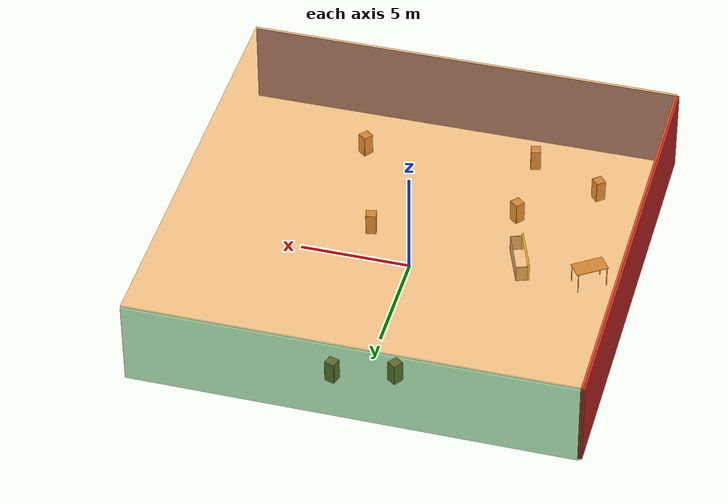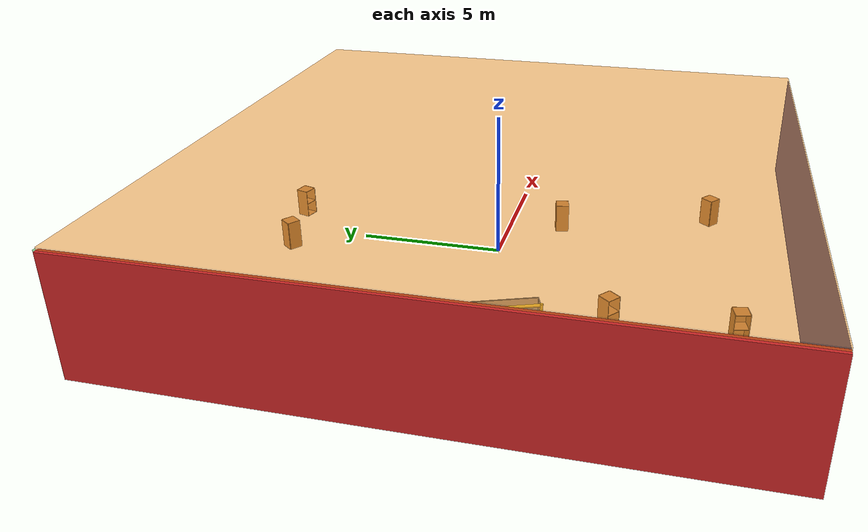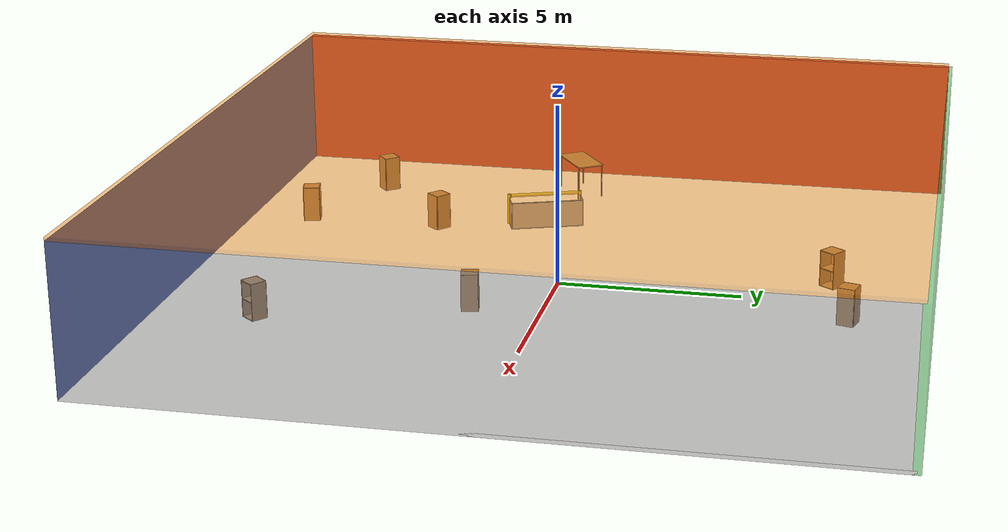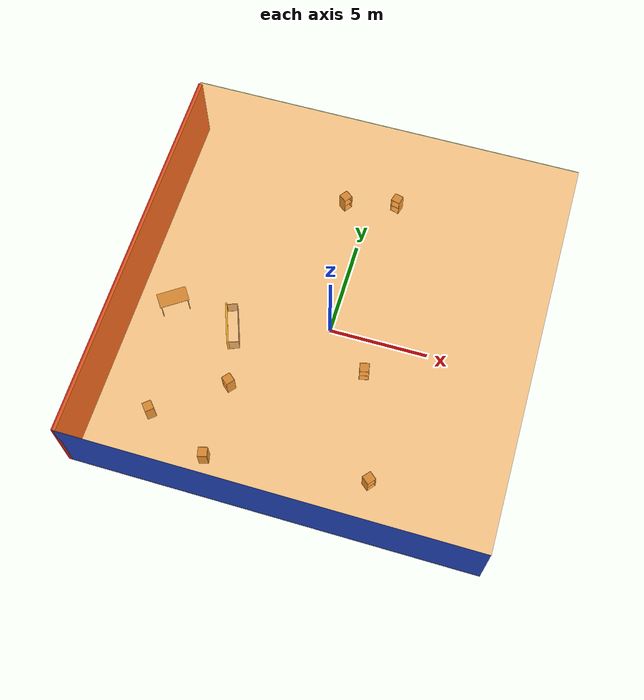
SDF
<sdf version="1.4">
 <world name="default">
  <physics type="ode">
   <max_step_size>0.001</max_step_size>
   <real_time_factor>1</real_time_factor>
   <real_time_update_rate>1000</real_time_update_rate>
   <gravity>0 0 -9.8</gravity>
  </physics>
  <scene><ambient>0.4 0.4 0.4 1</ambient><background>0.7 0.7 0.7 1</background><shadows>1</shadows></scene>
  <model name="Surrounding">
   <static>1</static>
   <link name="Ceiling">
    <collision name="Ceiling_Collision"><geometry><box><size>20 20 0.1</size></box></geometry></collision>
    <visual name="Ceiling_Visual">
     <geometry><box><size>20 20 0.1</size></box></geometry>
     <material>
      <script>
       <uri>file://media/materials/scripts/gazebo.material</uri>
       <name>Gazebo/OrangeTransparent</name>
      </script>
     </material>
    </visual>
    <pose>0 0 4.05 0 0 0</pose>
   </link>
   <link name="Wall_South">
    <collision name="Wall_South_Collision">
     <geometry><box><size>20 0 4</size></box></geometry>
     <pose>0 0 2 0 -0 0</pose>
    </collision>
    <visual name="Wall_South_Visual">
     <pose>0 0 2 0 -0 0</pose>
     <geometry><box><size>20 0 4</size></box></geometry>
     <material>
      <script><uri>file://media/materials/scripts/gazebo.material</uri><name>Gazebo/Blue</name></script>
     </material>
    </visual>
    <velocity_decay><linear>0</linear><angular>0</angular></velocity_decay>
    <pose>0 -10 0 0 -0 0</pose>
   </link>
   <link name="Wall_East">
    <collision name="Wall_21_Collision">
     <geometry><box><size>20 0 4</size></box></geometry>
     <pose>0 0 2 0 -0 0</pose>
    </collision>
    <visual name="Wall_21_Visual">
     <pose>0 0 2 0 -0 0</pose>
     <geometry><box><size>20 0 4</size></box></geometry>
     <material>
      <script><uri>file://media/materials/scripts/gazebo.material</uri><name>Gazebo/GreyTransparent</name></script>
     </material>
    </visual>
    <velocity_decay><linear>0</linear><angular>0</angular></velocity_decay>
    <pose>10 0 0 0 -0 1.5708</pose>
   </link>
   <link name="Wall_North">
    <collision name="Wall_22_Collision">
     <geometry><box><size>20 0.2 4</size></box></geometry>
     <pose>0 0 2 0 -0 0</pose>
    </collision>
    <visual name="Wall_22_Visual">
     <pose>0 0 2 0 -0 0</pose>
     <geometry><box><size>20 0.2 4</size></box></geometry>
     <material>
      <script><uri>file://media/materials/scripts/gazebo.material</uri><name>Gazebo/GreenTransparent</name></script>
     </material>
    </visual>
    <velocity_decay><linear>0</linear><angular>0</angular></velocity_decay>
    <pose>0 10 0 0 -0 0</pose>
   </link>
   <link name="Wall_West">
    <collision name="Wall_23_Collision">
     <geometry><box><size>20 0.2 4</size></box></geometry>
     <pose>0 0 2 0 -0 0</pose>
    </collision>
    <visual name="Wall_23_Visual">
     <pose>0 0 2 0 -0 0</pose>
     <geometry><box><size>20 0.2 4</size></box></geometry>
     <material>
      <script><uri>file://media/materials/scripts/gazebo.material</uri><name>Gazebo/Red</name></script>
     </material>
    </visual>
    <velocity_decay><linear>0</linear><angular>0</angular></velocity_decay>
    <pose>-10 0 0 0 0 -1.5708</pose>
   </link>
   <link name="Ground_link">
    <collision name="collision">
     <pose>0 0 .05 0 -0 0</pose>
     <geometry><box><size>20 20 0.1</size></box></geometry>
    </collision>
    <visual name="visual">
     <pose>0 0 .05 0 -0 0</pose>
     <geometry><box><size>20 20 0.1</size></box></geometry>
     <material>
      <script><uri>file://media/materials/scripts/gazebo.material</uri><name>Gazebo/GreyTransparent</name></script>
     </material>
    </visual>
   </link>
   <static>1</static>
  </model>
  <spherical_coordinates>
   <surface_model>EARTH_WGS84</surface_model>
   <latitude_deg>0</latitude_deg>
   <longitude_deg>0</longitude_deg>
   <elevation>0</elevation>
   <heading_deg>0</heading_deg>
  </spherical_coordinates>
  <light name="lightball_0" type="diffuse">
   <diffuse>0.8 0.8 0.8 1</diffuse>
   <specular>0.2 0.2 0.2 1</specular>
   <attenuation>
    <range>100</range>
    <constant>0.7</constant>
    <linear>0.01</linear>
    <quadratic>0.001</quadratic>
   </attenuation>
   <direction>-0.5 0.1 -0.9</direction>
   <pose>9.37157666103 -8.11213370998 3.6206110174 0 0 0</pose>
  </light>
  <light name="lightball_1" type="diffuse">
   <diffuse>0.8 0.8 0.8 1</diffuse>
   <specular>0.2 0.2 0.2 1</specular>
   <attenuation>
    <range>100</range>
    <constant>0.7</constant>
    <linear>0.01</linear>
    <quadratic>0.001</quadratic>
   </attenuation>
   <direction>-0.5 0.1 -0.9</direction>
   <pose>-5.49102126119 -5.93659258556 1.17532049993 0 0 0</pose>
  </light>
  <light name="lightball_2" type="diffuse">
   <diffuse>0.8 0.8 0.8 1</diffuse>
   <specular>0.2 0.2 0.2 1</specular>
   <attenuation>
    <range>100</range>
    <constant>0.7</constant>
    <linear>0.01</linear>
    <quadratic>0.001</quadratic>
   </attenuation>
   <direction>-0.5 0.1 -0.9</direction>
   <pose>3.8896763752 -8.2566927086 0.713971144604 0 0 0</pose>
  </light>
  <light name="lightball_3" type="diffuse">
   <diffuse>0.8 0.8 0.8 1</diffuse>
   <specular>0.2 0.2 0.2 1</specular>
   <attenuation>
    <range>100</range>
    <constant>0.7</constant>
    <linear>0.01</linear>
    <quadratic>0.001</quadratic>
   </attenuation>
   <direction>-0.5 0.1 -0.9</direction>
   <pose>-9.73136793728 -5.92784285668 3.86205346072 0 0 0</pose>
  </light>
  <light name="lightball_4" type="diffuse">
   <diffuse>0.8 0.8 0.8 1</diffuse>
   <specular>0.2 0.2 0.2 1</specular>
   <attenuation>
    <range>100</range>
    <constant>0.7</constant>
    <linear>0.01</linear>
    <quadratic>0.001</quadratic>
   </attenuation>
   <direction>-0.5 0.1 -0.9</direction>
   <pose>-6.71128680814 1.60273505253 3.35320371124 0 0 0</pose>
  </light>
  <light name="lightball_5" type="diffuse">
   <diffuse>0.8 0.8 0.8 1</diffuse>
   <specular>0.2 0.2 0.2 1</specular>
   <attenuation>
    <range>100</range>
    <constant>0.7</constant>
    <linear>0.01</linear>
    <quadratic>0.001</quadratic>
   </attenuation>
   <direction>-0.5 0.1 -0.9</direction>
   <pose>8.83578885885 -6.65021353572 2.81109071223 0 0 0</pose>
  </light>
  <light name="lightball_6" type="diffuse">
   <diffuse>0.8 0.8 0.8 1</diffuse>
   <specular>0.2 0.2 0.2 1</specular>
   <attenuation>
    <range>100</range>
    <constant>0.7</constant>
    <linear>0.01</linear>
    <quadratic>0.001</quadratic>
   </attenuation>
   <direction>-0.5 0.1 -0.9</direction>
   <pose>6.4818976148 9.0379814842 2.22678834353 0 0 0</pose>
  </light>
  <light name="lightball_7" type="diffuse">
   <diffuse>0.8 0.8 0.8 1</diffuse>
   <specular>0.2 0.2 0.2 1</specular>
   <attenuation>
    <range>100</range>
    <constant>0.7</constant>
    <linear>0.01</linear>
    <quadratic>0.001</quadratic>
   </attenuation>
   <direction>-0.5 0.1 -0.9</direction>
   <pose>3.44151200109 -0.200618272004 3.64161018367 0 0 0</pose>
  </light>
  <light name="lightball_8" type="diffuse">
   <diffuse>0.8 0.8 0.8 1</diffuse>
   <specular>0.2 0.2 0.2 1</specular>
   <attenuation>
    <range>100</range>
    <constant>0.7</constant>
    <linear>0.01</linear>
    <quadratic>0.001</quadratic>
   </attenuation>
   <direction>-0.5 0.1 -0.9</direction>
   <pose>0.648388668879 8.38879848053 3.83997363019 0 0 0</pose>
  </light>
  <light name="lightball_9" type="diffuse">
   <diffuse>0.8 0.8 0.8 1</diffuse>
   <specular>0.2 0.2 0.2 1</specular>
   <attenuation>
    <range>100</range>
    <constant>0.7</constant>
    <linear>0.01</linear>
    <quadratic>0.001</quadratic>
   </attenuation>
   <direction>-0.5 0.1 -0.9</direction>
   <pose>2.0824036515 -6.97085603817 2.06557966886 0 0 0</pose>
  </light>
  <light name="lightball_10" type="diffuse">
   <diffuse>0.8 0.8 0.8 1</diffuse>
   <specular>0.2 0.2 0.2 1</specular>
   <attenuation>
    <range>100</range>
    <constant>0.7</constant>
    <linear>0.01</linear>
    <quadratic>0.001</quadratic>
   </attenuation>
   <direction>-0.5 0.1 -0.9</direction>
   <pose>4.69508269598 8.20660703272 1.0629434892 0 0 0</pose>
  </light>
  <include><uri>model://cabinet</uri><pose>-7.17380892098 -6.74851583766 0 0 0 0.700348550361</pose></include>
  <include><uri>model://table</uri><pose>-8.01288680641 -0.889195007855 0 0 0 0.603523123122</pose></include>
  <include><uri>model://cabinet</uri><pose>-3.90217910639 -8.19231914697 0 0 0 0.227025916424</pose></include>
  <include><uri>model://cabinet</uri><pose>-3.92908076795 -4.33265852483 0 0 0 0.869861462748</pose></include>
  <include>
   <uri>model://robocup_3Dsim_goal</uri>
   <pose>-4.99099546273 -1.40511794215 0 0 0 0.354336801388</pose>
  </include>
  <include><uri>model://cabinet</uri><pose>-1.27885926993 7.29508812266 0 0 0 2.51157785201</pose></include>
  <include><uri>model://cabinet</uri><pose>2.27535961383 -1.89864905419 0 0 0 1.77615631141</pose></include>
  <include><uri>model://cabinet</uri><pose>1.35771492625 7.90592575867 0 0 0 1.29464488859</pose></include>
  <include><uri>model://cabinet</uri><pose>3.97797569725 -7.22934542788 0 0 0 2.44930044172</pose></include>
 </world>
</sdf>

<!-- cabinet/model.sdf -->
<sdf version="1.5">
  <model name="cabinet">
    <static>true</static>
    <link name="cabinet_bottom_plate">
      <inertial>
        <pose>0 0 -1 0 0 0</pose>
        <inertia>
          <ixx>2.050000</ixx>
          <ixy>0</ixy>
          <ixz>0</ixz>
          <iyy>2.050000</iyy>
          <iyz>0</iyz>
          <izz>2.050000</izz>
        </inertia>
        <mass>25.000000</mass>
      </inertial>
      <collision name="cabinet_bottom_plate_geom">
        <pose>0 0 0.010000 0 0 0</pose>
        <geometry>
          <box>
            <size>0.450000 0.450000 0.020000</size>
          </box>
        </geometry>
      </collision>
      <visual name="cabinet_bottom_plate_geom_visual">
        <pose>0 0 0.010000 0 0 0</pose>
        <geometry>
          <box>
            <size>0.450000 0.450000 0.020000</size>
          </box>
        </geometry>
        <material>
          <script>
            <uri>model://media/materials/scripts/gazebo.material</uri>
            <name>Gazebo/Wood</name>
          </script>
        </material>
      </visual>
      <collision name="cabinet_bottom_plate_geom_cabinet_back_plate">
        <pose>0.235000 0 0.510000 0 0 0</pose>
        <geometry>
          <box>
            <size>0.020000 0.450000 1.020000</size>
          </box>
        </geometry>
      </collision>
      <visual name="cabinet_bottom_plate_geom_cabinet_back_plate_visual">
        <pose>0.235000 0 0.510000 0 0 0</pose>
        <geometry>
          <box>
            <size>0.020000 0.450000 1.020000</size>
          </box>
        </geometry>
        <material>
          <script>
            <uri>model://media/materials/scripts/gazebo.material</uri>
            <name>Gazebo/Wood</name>
          </script>
        </material>
      </visual>
      <collision name="cabinet_bottom_plate_geom_cabinet_left_plate">
        <pose>0 0.235000 0.510000 0 0 0</pose>
        <geometry>
          <box>
            <size>0.450000 0.020000 1.020000</size>
          </box>
        </geometry>
      </collision>
      <visual name="cabinet_bottom_plate_geom_cabinet_left_plate_visual">
        <pose>0 0.235000 0.510000 0 0 0</pose>
        <geometry>
          <box>
            <size>0.450000 0.020000 1.020000</size>
          </box>
        </geometry>
        <material>
          <script>
            <uri>model://media/materials/scripts/gazebo.material</uri>
            <name>Gazebo/Wood</name>
          </script>
        </material>
      </visual>
      <collision name="cabinet_bottom_plate_geom_cabinet_middle_plate">
        <pose>0 0 0.510000 0 0 0</pose>
        <geometry>
          <box>
            <size>0.450000 0.450000 0.020000</size>
          </box>
        </geometry>
      </collision>
      <visual name="cabinet_bottom_plate_geom_cabinet_middle_plate_visual">
        <pose>0 0 0.510000 0 0 0</pose>
        <geometry>
          <box>
            <size>0.450000 0.450000 0.020000</size>
          </box>
        </geometry>
        <material>
          <script>
            <uri>model://media/materials/scripts/gazebo.material</uri>
            <name>Gazebo/Wood</name>
          </script>
        </material>
      </visual>
      <collision name="cabinet_bottom_plate_geom_cabinet_right_plate">
        <pose>0 -0.235000 0.510000 0 0 0</pose>
        <geometry>
          <box>
            <size>0.450000 0.020000 1.020000</size>
          </box>
        </geometry>
      </collision>
      <visual name="cabinet_bottom_plate_geom_cabinet_right_plate_visual">
        <pose>0 -0.235000 0.510000 0 0 0</pose>
        <geometry>
          <box>
            <size>0.450000 0.020000 1.020000</size>
          </box>
        </geometry>
        <material>
          <script>
            <uri>model://media/materials/scripts/gazebo.material</uri>
            <name>Gazebo/Wood</name>
          </script>
        </material>
      </visual>
      <collision name="cabinet_bottom_plate_geom_cabinet_top_plate">
        <pose>0 0 1.010000 0 0 0</pose>
        <geometry>
          <box>
            <size>0.450000 0.450000 0.020000</size>
          </box>
        </geometry>
      </collision>
      <visual name="cabinet_bottom_plate_geom_cabinet_top_plate_visual">
        <pose>0 0 1.010000 0 0 0</pose>
        <geometry>
          <box>
            <size>0.450000 0.450000 0.020000</size>
          </box>
        </geometry>
        <material>
          <script>
            <uri>model://media/materials/scripts/gazebo.material</uri>
            <name>Gazebo/Wood</name>
          </script>
        </material>
      </visual>
    </link>
  </model>
</sdf>

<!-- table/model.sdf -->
<sdf version="1.5">
  <model name="table">
    <static>true</static>
    <link name="link">
      <collision name="surface">
        <pose>0 0 1.0 0 0 0</pose>
        <geometry>
          <box>
            <size>1.5 0.8 0.03</size>
          </box>
        </geometry>
        <surface>
          <friction>
            <ode>
              <mu>0.6</mu>
              <mu2>0.6</mu2>
            </ode>
          </friction>
        </surface>
      </collision>
      <visual name="visual1">
        <pose>0 0 1.0 0 0 0</pose>
        <geometry>
          <box>
            <size>1.5 0.8 0.03</size>
          </box>
        </geometry>
        <material>
          <script>
            <uri>model://media/materials/scripts/gazebo.material</uri>
            <name>Gazebo/Wood</name>
          </script>
        </material>
      </visual>
      <collision name="front_left_leg">
        <pose>0.68 0.38 0.5 0 0 0</pose>
        <geometry>
          <cylinder>
            <radius>0.02</radius>
            <length>1.0</length>
          </cylinder>
        </geometry>
      </collision>
      <visual name="front_left_leg">
        <pose>0.68 0.38 0.5 0 0 0</pose>
        <geometry>
          <cylinder>
            <radius>0.02</radius>
            <length>1.0</length>
          </cylinder>
        </geometry>
        <material>
          <script>
            <uri>model://media/materials/scripts/gazebo.material</uri>
            <name>Gazebo/Grey</name>
          </script>
        </material>
      </visual>
      <collision name="front_right_leg">
        <pose>0.68 -0.38 0.5 0 0 0</pose>
        <geometry>
          <cylinder>
            <radius>0.02</radius>
            <length>1.0</length>
          </cylinder>
        </geometry>
      </collision>
      <visual name="front_right_leg">
        <pose>0.68 -0.38 0.5 0 0 0</pose>
        <geometry>
          <cylinder>
            <radius>0.02</radius>
            <length>1.0</length>
          </cylinder>
        </geometry>
        <material>
          <script>
            <uri>model://media/materials/scripts/gazebo.material</uri>
            <name>Gazebo/Grey</name>
          </script>
        </material>
      </visual>
      <collision name="back_right_leg">
        <pose>-0.68 -0.38 0.5 0 0 0</pose>
        <geometry>
          <cylinder>
            <radius>0.02</radius>
            <length>1.0</length>
          </cylinder>
        </geometry>
      </collision>
      <visual name="back_right_leg">
        <pose>-0.68 -0.38 0.5 0 0 0</pose>
        <geometry>
          <cylinder>
            <radius>0.02</radius>
            <length>1.0</length>
          </cylinder>
        </geometry>
        <material>
          <script>
            <uri>model://media/materials/scripts/gazebo.material</uri>
            <name>Gazebo/Grey</name>
          </script>
        </material>
      </visual>
      <collision name="back_left_leg">
        <pose>-0.68 0.38 0.5 0 0 0</pose>
        <geometry>
          <cylinder>
            <radius>0.02</radius>
            <length>1.0</length>
          </cylinder>
        </geometry>
      </collision>
      <visual name="back_left_leg">
        <pose>-0.68 0.38 0.5 0 0 0</pose>
        <geometry>
          <cylinder>
            <radius>0.02</radius>
            <length>1.0</length>
          </cylinder>
        </geometry>
        <material>
          <script>
            <uri>model://media/materials/scripts/gazebo.material</uri>
            <name>Gazebo/Grey</name>
          </script>
        </material>
      </visual>
    </link>
  </model>
</sdf>

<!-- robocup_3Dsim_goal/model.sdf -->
<sdf version="1.5">
  <model name="robocup_3d_goal">
    <static>true</static>
    <link name="left_post">
      <pose>0 1.05 0.45 0 0 0</pose>
      <collision name="collision">
        <geometry>
          <cylinder>
            <radius>0.05</radius>
            <length>0.9</length>
          </cylinder>
        </geometry>
      </collision>
      <visual name="visual">
        <geometry>
          <cylinder>
            <radius>0.05</radius>
            <length>0.9</length>
          </cylinder>
        </geometry>
        <material>
          <script>
            <uri>file://media/materials/scripts/gazebo.material</uri>
            <name>Gazebo/ZincYellow</name>
          </script>
        </material>
      </visual>
    </link>
    <link name="left_support_horiz_lower">
      <pose>0.30 1.05 0.01 0 0 0</pose>
      <collision name="collision">
        <geometry>
          <box>
            <size>0.50 0.02 0.02</size>
          </box>
        </geometry>
      </collision>
      <visual name="visual">
        <geometry>
          <box>
            <size>0.50 0.02 0.02</size>
          </box>
        </geometry>
        <material>
          <script>
            <uri>file://media/materials/scripts/gazebo.material</uri>
            <name>Gazebo/White</name>
          </script>
        </material>
      </visual>
    </link>
    <link name="left_support_horiz_upper">
      <pose>0.30 1.05 0.79 0 0 0</pose>
      <collision name="collision">
        <geometry>
          <box>
            <size>0.50 0.02 0.02</size>
          </box>
        </geometry>
      </collision>
      <visual name="visual">
        <geometry>
          <box>
            <size>0.50 0.02 0.02</size>
          </box>
        </geometry>
        <material>
          <script>
            <uri>file://media/materials/scripts/gazebo.material</uri>
            <name>Gazebo/White</name>
          </script>
        </material>
      </visual>
    </link>
    <link name="left_support_vertical">
      <pose>0.56 1.05 0.4 0 1.5708 0</pose>
      <collision name="collision">
        <geometry>
          <box>
            <size>0.80 0.02 0.02</size>
          </box>
        </geometry>
      </collision>
      <visual name="visual">
        <geometry>
          <box>
            <size>0.80 0.02 0.02</size>
          </box>
        </geometry>
        <material>
          <script>
            <uri>file://media/materials/scripts/gazebo.material</uri>
            <name>Gazebo/White</name>
          </script>
        </material>
      </visual>
    </link>
    <link name="right_support_horiz_lower">
      <pose>0.30 -1.05 0.01 0 0 0</pose>
      <collision name="collision">
        <geometry>
          <box>
            <size>0.50 0.02 0.02</size>
          </box>
        </geometry>
      </collision>
      <visual name="visual">
        <geometry>
          <box>
            <size>0.50 0.02 0.02</size>
          </box>
        </geometry>
        <material>
          <script>
            <uri>file://media/materials/scripts/gazebo.material</uri>
            <name>Gazebo/White</name>
          </script>
        </material>
      </visual>
    </link>
    <link name="right_support_horiz_upper">
      <pose>0.30 -1.05 0.79 0 0 0</pose>
      <collision name="collision">
        <geometry>
          <box>
            <size>0.50 0.02 0.02</size>
          </box>
        </geometry>
      </collision>
      <visual name="visual">
        <geometry>
          <box>
            <size>0.50 0.02 0.02</size>
          </box>
        </geometry>
        <material>
          <script>
            <uri>file://media/materials/scripts/gazebo.material</uri>
            <name>Gazebo/White</name>
          </script>
        </material>
      </visual>
    </link>
    <link name="right_support_vertical">
      <pose>0.56 -1.05 0.4 0 1.5708 0</pose>
      <collision name="collision">
        <geometry>
          <box>
            <size>0.80 0.02 0.02</size>
          </box>
        </geometry>
      </collision>
      <visual name="visual">
        <geometry>
          <box>
            <size>0.80 0.02 0.02</size>
          </box>
        </geometry>
        <material>
          <script>
            <uri>file://media/materials/scripts/gazebo.material</uri>
            <name>Gazebo/White</name>
          </script>
        </material>
      </visual>
    </link>
    <link name="center_support_horiz_lower">
      <pose>0.56 0 0.01 0 1.5708 0</pose>
      <collision name="collision">
        <geometry>
          <box>
            <size>0.02 2.08 0.02</size>
          </box>
        </geometry>
      </collision>
      <visual name="visual">
        <geometry>
          <box>
            <size>0.02 2.08 0.02</size>
          </box>
        </geometry>
        <material>
          <script>
            <uri>file://media/materials/scripts/gazebo.material</uri>
            <name>Gazebo/White</name>
          </script>
        </material>
      </visual>
    </link>
    <link name="center_support_horiz_upper">
      <pose>0.56 0 0.79 0 1.5708 0</pose>
      <collision name="collision">
        <geometry>
          <box>
            <size>0.02 2.08 0.02</size>
          </box>
        </geometry>
      </collision>
      <visual name="visual">
        <geometry>
          <box>
            <size>0.02 2.08 0.02</size>
          </box>
        </geometry>
        <material>
          <script>
            <uri>file://media/materials/scripts/gazebo.material</uri>
            <name>Gazebo/White</name>
          </script>
        </material>
      </visual>
    </link>
    <link name="right_post">
      <pose>0 -1.05 0.45 0 0 0</pose>
      <collision name="collision">
        <geometry>
          <cylinder>
            <radius>0.05</radius>
            <length>0.9</length>
          </cylinder>
        </geometry>
      </collision>
      <visual name="visual">
        <geometry>
          <cylinder>
            <radius>0.05</radius>
            <length>0.9</length>
          </cylinder>
        </geometry>
        <material>
          <script>
            <uri>file://media/materials/scripts/gazebo.material</uri>
            <name>Gazebo/ZincYellow</name>
          </script>
        </material>
      </visual>
    </link>
    <link name="crossbar">
      <pose>0 0 0.85 1.57 1.57 0</pose>
      <collision name="collision">
        <geometry>
          <cylinder>
            <radius>0.05</radius>
            <length>2.0</length>
          </cylinder>
        </geometry>
      </collision>
      <visual name="visual">
        <geometry>
          <cylinder>
            <radius>0.05</radius>
            <length>2.0</length>
          </cylinder>
        </geometry>
        <material>
          <script>
            <uri>file://media/materials/scripts/gazebo.material</uri>
            <name>Gazebo/ZincYellow</name>
          </script>
        </material>
      </visual>
    </link>
    <link name="center_net">
      <pose>0.56 0 0.40 0 0 0</pose>
      <collision name="collision">
        <geometry>
          <box>
            <size>0.01 2.1 0.80</size>
          </box>
        </geometry>
      </collision>
      <visual name="visual">
        <geometry>
          <box>
            <size>0.01 2.1 0.80</size>
          </box>
        </geometry>
        <material>
          <script>
            <uri>model://../model_source/models/robocup09_spl_field/materials/scripts/</uri>
            <uri>model://../model_source/models/robocup09_spl_field/materials/textures/</uri>
            <name>RoboCup/Net</name>
          </script>
        </material>
      </visual>
    </link>
    <link name="left_net">
      <pose>0.30 1.05 0.40 0 0 0</pose>
      <collision name="collision">
        <geometry>
          <box>
            <size>0.50 0.01 0.76</size>
          </box>
        </geometry>
      </collision>
      <visual name="visual">
        <geometry>
          <box>
            <size>0.50 0.01 0.76</size>
          </box>
        </geometry>
        <material>
          <script>
            <uri>model://../model_source/models/robocup09_spl_field/materials/scripts/</uri>
            <uri>model://../model_source/models/robocup09_spl_field/materials/textures/</uri>
            <name>RoboCup/Net</name>
          </script>
        </material>
      </visual>
    </link>
    <link name="right_net">
      <pose>0.30 -1.05 0.40 0 0 0</pose>
      <collision name="collision">
        <geometry>
          <box>
            <size>0.50 0.01 0.76</size>
          </box>
        </geometry>
      </collision>
      <visual name="visual">
        <geometry>
          <box>
            <size>0.50 0.01 0.76</size>
          </box>
        </geometry>
        <material>
          <script>
            <uri>model://../model_source/models/robocup09_spl_field/materials/scripts/</uri>
            <uri>model://../model_source/models/robocup09_spl_field/materials/textures/</uri>
            <name>RoboCup/Net</name>
          </script>
        </material>
      </visual>
    </link>
  </model>
</sdf>
